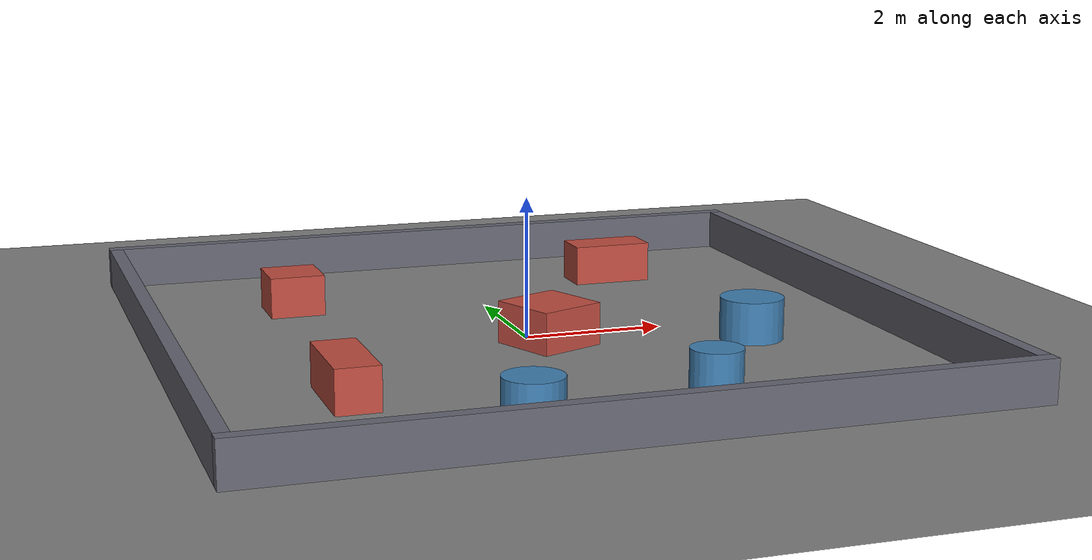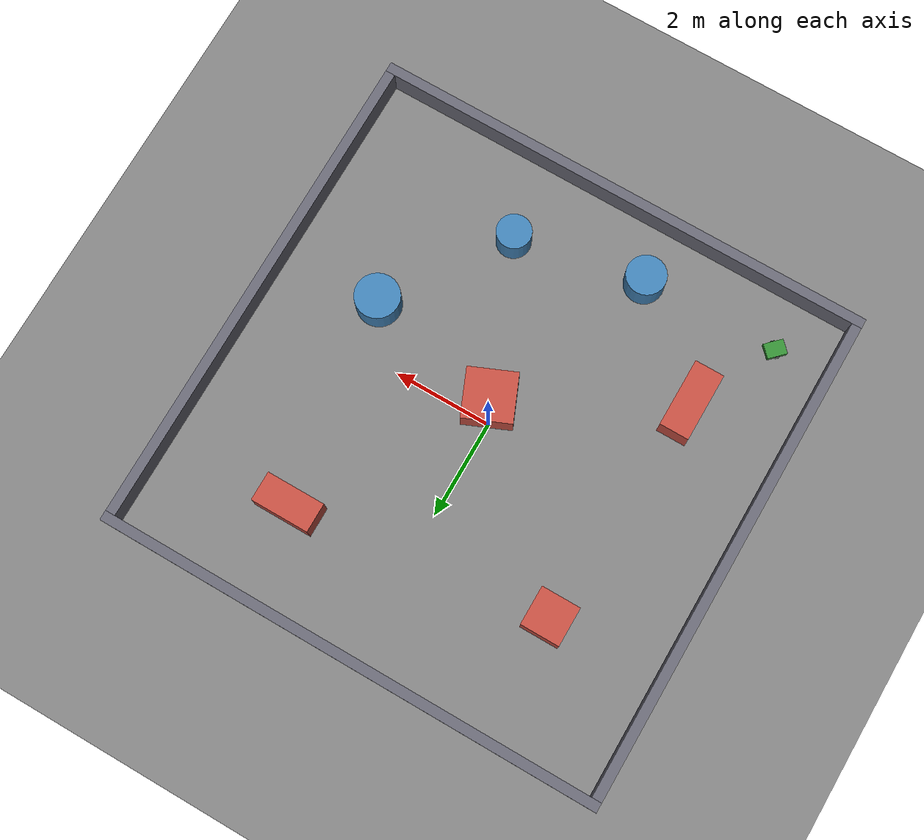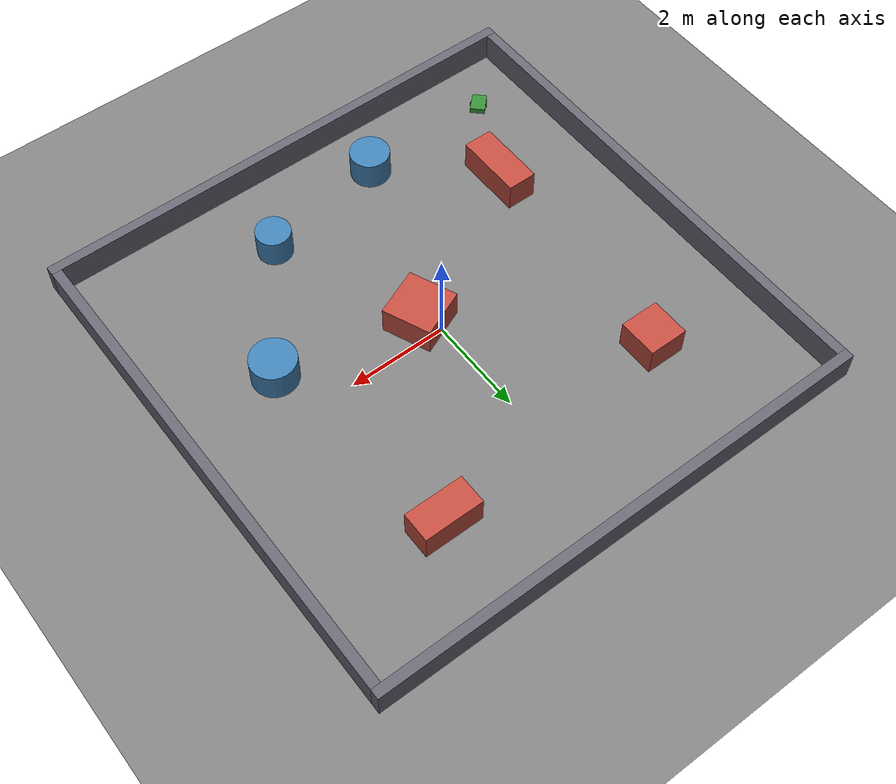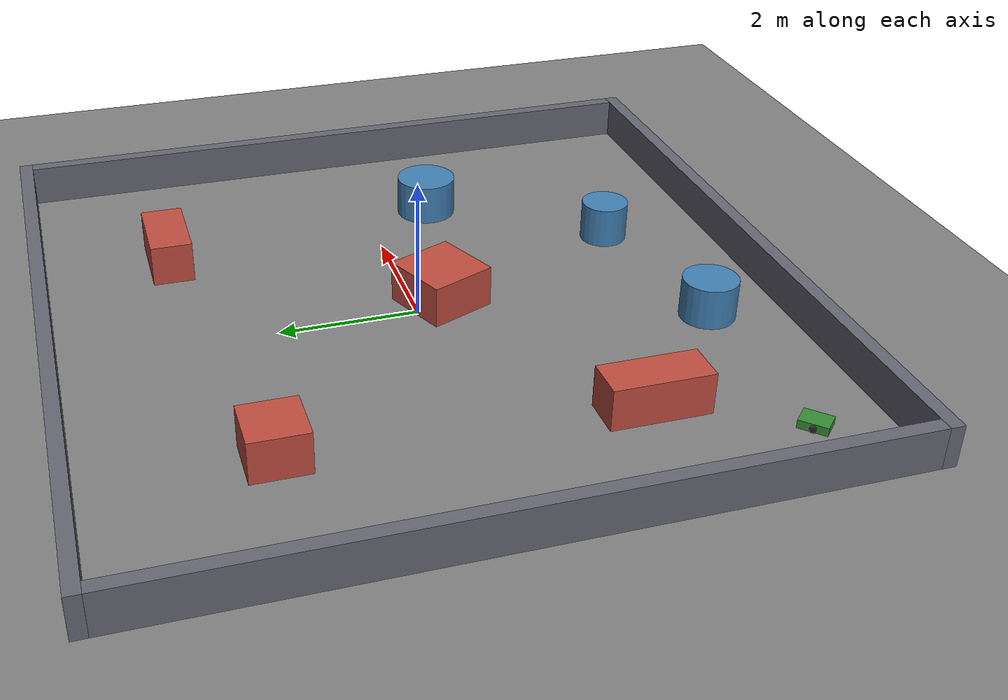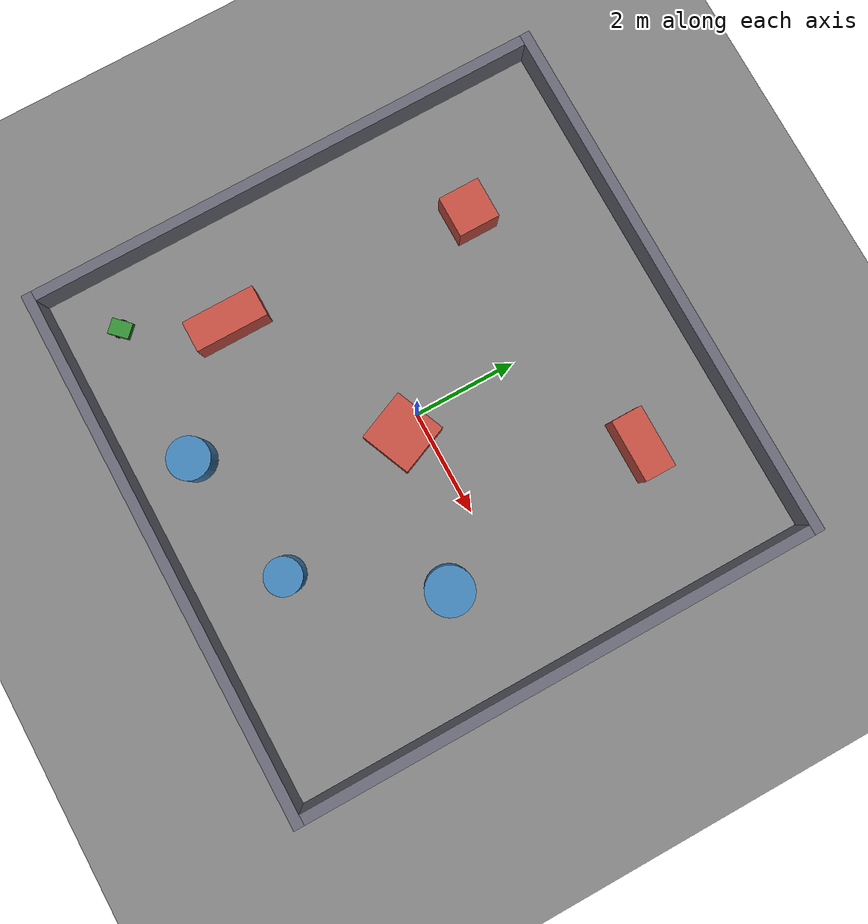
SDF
<?xml version="1.0" ?>
<sdf version="1.9">
  <world name="arena">

    <physics name="1ms" type="ignored">
      <max_step_size>0.001</max_step_size>
      <real_time_factor>0</real_time_factor>
    </physics>

    <plugin filename="gz-sim-physics-system"
            name="gz::sim::systems::Physics"/>
    <plugin filename="gz-sim-user-commands-system"
            name="gz::sim::systems::UserCommands"/>
    <plugin filename="gz-sim-scene-broadcaster-system"
            name="gz::sim::systems::SceneBroadcaster"/>
    <plugin filename="gz-sim-sensors-system"
            name="gz::sim::systems::Sensors">
      <render_engine>ogre2</render_engine>
    </plugin>
    <plugin filename="gz-sim-imu-system"
            name="gz::sim::systems::Imu"/>

    <gravity>0 0 -9.8</gravity>

    <scene>
      <ambient>0.6 0.6 0.6 1</ambient>
      <background>0.7 0.8 0.9 1</background>
      <grid>false</grid>
    </scene>

    <light type="directional" name="sun">
      <cast_shadows>true</cast_shadows>
      <pose>0 0 10 0 0 0</pose>
      <diffuse>0.9 0.9 0.9 1</diffuse>
      <specular>0.2 0.2 0.2 1</specular>
      <direction>-0.5 0.3 -0.9</direction>
    </light>

    <!-- ================= ground ================= -->
    <model name="ground_plane">
      <static>true</static>
      <link name="link">
        <collision name="collision">
          <geometry>
            <plane><normal>0 0 1</normal><size>100 100</size></plane>
          </geometry>
          <surface>
            <friction><ode><mu>1.0</mu><mu2>1.0</mu2></ode></friction>
          </surface>
        </collision>
        <visual name="visual">
          <geometry>
            <plane><normal>0 0 1</normal><size>100 100</size></plane>
          </geometry>
          <material>
            <ambient>0.4 0.4 0.4 1</ambient>
            <diffuse>0.5 0.5 0.5 1</diffuse>
          </material>
        </visual>
      </link>
    </model>

    <!-- ================= perimeter walls =================
         10 x 10 m interior, 0.2 m thick, 0.6 m tall - well above the
         0.15 m LiDAR mounting height so beams always hit them. -->
    <model name="wall_north">
      <static>true</static>
      <pose>0 5.1 0.3 0 0 0</pose>
      <link name="link">
        <collision name="collision">
          <geometry><box><size>10.4 0.2 0.6</size></box></geometry>
        </collision>
        <visual name="visual">
          <geometry><box><size>10.4 0.2 0.6</size></box></geometry>
          <material><ambient>0.3 0.3 0.35 1</ambient><diffuse>0.4 0.4 0.45 1</diffuse></material>
        </visual>
      </link>
    </model>

    <model name="wall_south">
      <static>true</static>
      <pose>0 -5.1 0.3 0 0 0</pose>
      <link name="link">
        <collision name="collision">
          <geometry><box><size>10.4 0.2 0.6</size></box></geometry>
        </collision>
        <visual name="visual">
          <geometry><box><size>10.4 0.2 0.6</size></box></geometry>
          <material><ambient>0.3 0.3 0.35 1</ambient><diffuse>0.4 0.4 0.45 1</diffuse></material>
        </visual>
      </link>
    </model>

    <model name="wall_east">
      <static>true</static>
      <pose>5.1 0 0.3 0 0 0</pose>
      <link name="link">
        <collision name="collision">
          <geometry><box><size>0.2 10.0 0.6</size></box></geometry>
        </collision>
        <visual name="visual">
          <geometry><box><size>0.2 10.0 0.6</size></box></geometry>
          <material><ambient>0.3 0.3 0.35 1</ambient><diffuse>0.4 0.4 0.45 1</diffuse></material>
        </visual>
      </link>
    </model>

    <model name="wall_west">
      <static>true</static>
      <pose>-5.1 0 0.3 0 0 0</pose>
      <link name="link">
        <collision name="collision">
          <geometry><box><size>0.2 10.0 0.6</size></box></geometry>
        </collision>
        <visual name="visual">
          <geometry><box><size>0.2 10.0 0.6</size></box></geometry>
          <material><ambient>0.3 0.3 0.35 1</ambient><diffuse>0.4 0.4 0.45 1</diffuse></material>
        </visual>
      </link>
    </model>

    <model name="obstacle_box_1">
      <static>true</static>
      <pose>-2.8 2.6 0.3 0 0 0</pose>
      <link name="link">
        <collision name="collision"><geometry><box><size>0.8 0.8 0.6</size></box></geometry></collision>
        <visual name="visual">
          <geometry><box><size>0.8 0.8 0.6</size></box></geometry>
          <material><ambient>0.6 0.25 0.2 1</ambient><diffuse>0.75 0.3 0.25 1</diffuse></material>
        </visual>
      </link>
    </model>

    <model name="obstacle_box_2">
      <static>true</static>
      <pose>2.4 3.2 0.3 0 0 0</pose>
      <link name="link">
        <collision name="collision"><geometry><box><size>1.2 0.6 0.6</size></box></geometry></collision>
        <visual name="visual">
          <geometry><box><size>1.2 0.6 0.6</size></box></geometry>
          <material><ambient>0.6 0.25 0.2 1</ambient><diffuse>0.75 0.3 0.25 1</diffuse></material>
        </visual>
      </link>
    </model>

    <model name="obstacle_box_3">
      <static>true</static>
      <pose>0.2 -0.4 0.3 0 0 0.4</pose>
      <link name="link">
        <collision name="collision"><geometry><box><size>1.0 1.0 0.6</size></box></geometry></collision>
        <visual name="visual">
          <geometry><box><size>1.0 1.0 0.6</size></box></geometry>
          <material><ambient>0.6 0.25 0.2 1</ambient><diffuse>0.75 0.3 0.25 1</diffuse></material>
        </visual>
      </link>
    </model>

    <model name="obstacle_box_4">
      <static>true</static>
      <pose>-3.1 -2.2 0.3 0 0 0</pose>
      <link name="link">
        <collision name="collision"><geometry><box><size>0.6 1.4 0.6</size></box></geometry></collision>
        <visual name="visual">
          <geometry><box><size>0.6 1.4 0.6</size></box></geometry>
          <material><ambient>0.6 0.25 0.2 1</ambient><diffuse>0.75 0.3 0.25 1</diffuse></material>
        </visual>
      </link>
    </model>

    <model name="obstacle_cyl_1">
      <static>true</static>
      <pose>3.0 -1.0 0.3 0 0 0</pose>
      <link name="link">
        <collision name="collision"><geometry><cylinder><radius>0.45</radius><length>0.6</length></cylinder></geometry></collision>
        <visual name="visual">
          <geometry><cylinder><radius>0.45</radius><length>0.6</length></cylinder></geometry>
          <material><ambient>0.2 0.4 0.55 1</ambient><diffuse>0.25 0.5 0.7 1</diffuse></material>
        </visual>
      </link>
    </model>

    <model name="obstacle_cyl_2">
      <static>true</static>
      <pose>1.4 -3.4 0.3 0 0 0</pose>
      <link name="link">
        <collision name="collision"><geometry><cylinder><radius>0.35</radius><length>0.6</length></cylinder></geometry></collision>
        <visual name="visual">
          <geometry><cylinder><radius>0.35</radius><length>0.6</length></cylinder></geometry>
          <material><ambient>0.2 0.4 0.55 1</ambient><diffuse>0.25 0.5 0.7 1</diffuse></material>
        </visual>
      </link>
    </model>

    <model name="obstacle_cyl_3">
      <static>true</static>
      <pose>-1.2 -3.9 0.3 0 0 0</pose>
      <link name="link">
        <collision name="collision"><geometry><cylinder><radius>0.4</radius><length>0.6</length></cylinder></geometry></collision>
        <visual name="visual">
          <geometry><cylinder><radius>0.4</radius><length>0.6</length></cylinder></geometry>
          <material><ambient>0.2 0.4 0.55 1</ambient><diffuse>0.25 0.5 0.7 1</diffuse></material>
        </visual>
      </link>
    </model>

    <!-- ================= robot ================= -->
    <include>
      <uri>model://diffbot</uri>
      <name>diffbot</name>
      <pose>-4.0 -4.0 0.06 0 0 0.785</pose>
    </include>

  </world>
</sdf>

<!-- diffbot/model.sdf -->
<sdf version="1.9">
  <model name="diffbot">

    <!-- ============ chassis ============ -->
    <link name="base_link">
      <pose>0 0 0 0 0 0</pose>
      <inertial>
        <mass>4.0</mass>
        <inertia>
          <ixx>0.0433</ixx><ixy>0</ixy><ixz>0</ixz>
          <iyy>0.0733</iyy><iyz>0</iyz>
          <izz>0.1033</izz>
        </inertia>
      </inertial>
      <collision name="collision">
        <geometry><box><size>0.40 0.30 0.12</size></box></geometry>
      </collision>
      <visual name="visual">
        <geometry><box><size>0.40 0.30 0.12</size></box></geometry>
        <material>
          <ambient>0.15 0.35 0.15 1</ambient>
          <diffuse>0.2 0.55 0.2 1</diffuse>
        </material>
      </visual>

      <!-- ============ LiDAR ============ -->
      <sensor name="lidar" type="gpu_lidar">
        <!-- 0.15 m up: above the chassis, below the 0.6 m obstacle tops. -->
        <pose>0.15 0 0.15 0 0 0</pose>
        <topic>scan</topic>
        <update_rate>20</update_rate>
        <always_on>true</always_on>
        <visualize>false</visualize>
        <gz_frame_id>diffbot/lidar_link</gz_frame_id>
        <lidar>
          <scan>
            <horizontal>
              <samples>360</samples>
              <resolution>1</resolution>
              <!-- 360 beams at exactly 1 degree. max_angle is pi - 1 degree so
                   the last beam does not duplicate the first; even 18-beam
                   blocks for min-pooling depend on this. -->
              <min_angle>-3.141593</min_angle>
              <max_angle>3.124139</max_angle>
            </horizontal>
            <vertical>
              <samples>1</samples>
              <resolution>1</resolution>
              <min_angle>0</min_angle>
              <max_angle>0</max_angle>
            </vertical>
          </scan>
          <range>
            <min>0.08</min>
            <max>10.0</max>
            <resolution>0.01</resolution>
          </range>
          <noise>
            <type>gaussian</type>
            <mean>0.0</mean>
            <stddev>0.01</stddev>
          </noise>
        </lidar>
      </sensor>
    </link>

    <!-- ============ drive wheels ============ -->
    <link name="left_wheel">
      <pose>0 0.15 -0.01 -1.5707 0 0</pose>
      <inertial>
        <mass>0.3</mass>
        <inertia>
          <ixx>0.000244</ixx><ixy>0</ixy><ixz>0</ixz>
          <iyy>0.000244</iyy><iyz>0</iyz>
          <izz>0.000375</izz>
        </inertia>
      </inertial>
      <collision name="collision">
        <geometry><cylinder><radius>0.05</radius><length>0.04</length></cylinder></geometry>
        <surface>
          <friction><ode><mu>1.2</mu><mu2>1.2</mu2></ode></friction>
        </surface>
      </collision>
      <visual name="visual">
        <geometry><cylinder><radius>0.05</radius><length>0.04</length></cylinder></geometry>
        <material><ambient>0.1 0.1 0.1 1</ambient><diffuse>0.15 0.15 0.15 1</diffuse></material>
      </visual>
    </link>

    <link name="right_wheel">
      <pose>0 -0.15 -0.01 -1.5707 0 0</pose>
      <inertial>
        <mass>0.3</mass>
        <inertia>
          <ixx>0.000244</ixx><ixy>0</ixy><ixz>0</ixz>
          <iyy>0.000244</iyy><iyz>0</iyz>
          <izz>0.000375</izz>
        </inertia>
      </inertial>
      <collision name="collision">
        <geometry><cylinder><radius>0.05</radius><length>0.04</length></cylinder></geometry>
        <surface>
          <friction><ode><mu>1.2</mu><mu2>1.2</mu2></ode></friction>
        </surface>
      </collision>
      <visual name="visual">
        <geometry><cylinder><radius>0.05</radius><length>0.04</length></cylinder></geometry>
        <material><ambient>0.1 0.1 0.1 1</ambient><diffuse>0.15 0.15 0.15 1</diffuse></material>
      </visual>
    </link>

    <link name="caster">
      <pose>-0.15 0 -0.04 0 0 0</pose>
      <inertial>
        <mass>0.1</mass>
        <inertia>
          <ixx>0.00001</ixx><ixy>0</ixy><ixz>0</ixz>
          <iyy>0.00001</iyy><iyz>0</iyz>
          <izz>0.00001</izz>
        </inertia>
      </inertial>
      <collision name="collision">
        <geometry><sphere><radius>0.02</radius></sphere></geometry>
        <surface>
          <friction><ode><mu>0.0</mu><mu2>0.0</mu2></ode></friction>
        </surface>
      </collision>
      <visual name="visual">
        <geometry><sphere><radius>0.02</radius></sphere></geometry>
        <material><ambient>0.1 0.1 0.1 1</ambient><diffuse>0.15 0.15 0.15 1</diffuse></material>
      </visual>
    </link>

    <joint name="left_wheel_joint" type="revolute">
      <parent>base_link</parent>
      <child>left_wheel</child>
      <axis>
        <xyz>0 0 1</xyz>
        <limit><lower>-1e16</lower><upper>1e16</upper></limit>
      </axis>
    </joint>

    <joint name="right_wheel_joint" type="revolute">
      <parent>base_link</parent>
      <child>right_wheel</child>
      <axis>
        <xyz>0 0 1</xyz>
        <limit><lower>-1e16</lower><upper>1e16</upper></limit>
      </axis>
    </joint>

    <joint name="caster_joint" type="fixed">
      <parent>base_link</parent>
      <child>caster</child>
    </joint>

    <!-- ============ differential drive ============ -->
    <plugin filename="gz-sim-diff-drive-system"
            name="gz::sim::systems::DiffDrive">
      <left_joint>left_wheel_joint</left_joint>
      <right_joint>right_wheel_joint</right_joint>
      <wheel_separation>0.30</wheel_separation>
      <wheel_radius>0.05</wheel_radius>
      <max_wheel_acceleration>10.0</max_wheel_acceleration>
      <max_velocity>20.0</max_velocity>
      <topic>cmd_vel</topic>
      <odom_topic>odom</odom_topic>
      <tf_topic>tf</tf_topic>
      <frame_id>odom</frame_id>
      <child_frame_id>diffbot/base_link</child_frame_id>
      <!-- Must equal contract.CONTROL_HZ. See the header comment. -->
      <odom_publish_frequency>20</odom_publish_frequency>
    </plugin>

  </model>
</sdf>
